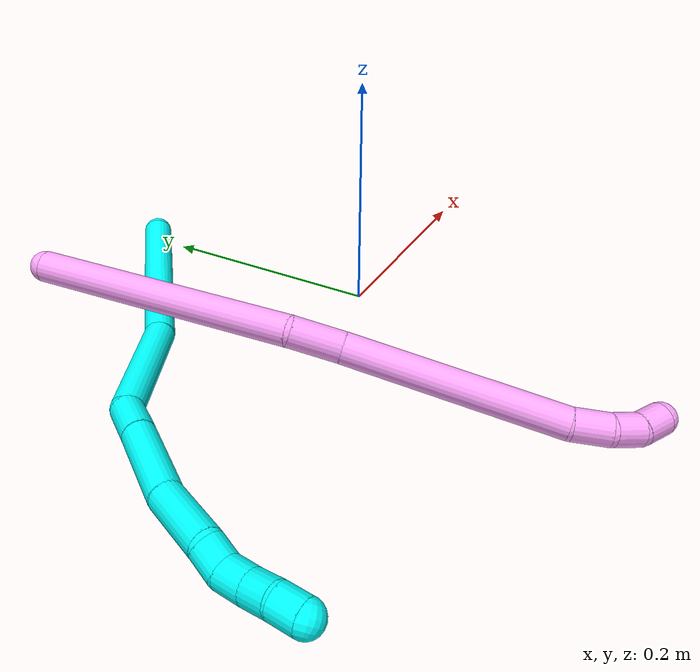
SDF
<sdf version="1.7">
 <world name="default">
  <model name="3">
   <static>0</static>
   <link name="3">
    <collision name="collision-cylinder-e_1_1_4">
     <pose>0.021013 -0.04843 -0.062774 2.48447 0.259076 0.729975</pose>
     <geometry><cylinder><radius>0.0125</radius><length>0.164044</length></cylinder></geometry>
     <surface>
      <friction><ode><mu>1.16</mu><mu2>1.16</mu2><slip1>0</slip1><slip2>0</slip2></ode></friction>
      <contact><ode><kp>1e+06</kp><kd>1</kd><max_vel>0</max_vel><min_depth>0.001</min_depth></ode></contact>
     </surface>
    </collision>
    <visual name="visual-cylinder-e_1_1_4">
     <pose>0.021013 -0.04843 -0.062774 2.48447 0.259076 0.729975</pose>
     <geometry><cylinder><radius>0.0125</radius><length>0.164044</length></cylinder></geometry>
     <material><ambient>0.003922 1 0.996078 1</ambient></material>
    </visual>
    <collision name="collision-cylinder-e_2_4_5">
     <pose>0.042172 -0.128457 -0.164633 2.46175 0.002906 0.008218</pose>
     <geometry><cylinder><radius>0.0125</radius><length>0.10052</length></cylinder></geometry>
     <surface>
      <friction><ode><mu>1.16</mu><mu2>1.16</mu2><slip1>0</slip1><slip2>0</slip2></ode></friction>
      <contact><ode><kp>1e+06</kp><kd>1</kd><max_vel>0</max_vel><min_depth>0.001</min_depth></ode></contact>
     </surface>
    </collision>
    <visual name="visual-cylinder-e_2_4_5">
     <pose>0.042172 -0.128457 -0.164633 2.46175 0.002906 0.008218</pose>
     <geometry><cylinder><radius>0.0125</radius><length>0.10052</length></cylinder></geometry>
     <material><ambient>0.003922 1 0.996078 1</ambient></material>
    </visual>
    <collision name="collision-cylinder-e_3_5_6">
     <pose>0.050192 -0.171664 -0.213114 2.25117 0.485156 0.956814</pose>
     <geometry><cylinder><radius>0.0125</radius><length>0.033767</length></cylinder></geometry>
     <surface>
      <friction><ode><mu>1.16</mu><mu2>1.16</mu2><slip1>0</slip1><slip2>0</slip2></ode></friction>
      <contact><ode><kp>1e+06</kp><kd>1</kd><max_vel>0</max_vel><min_depth>0.001</min_depth></ode></contact>
     </surface>
    </collision>
    <visual name="visual-cylinder-e_3_5_6">
     <pose>0.050192 -0.171664 -0.213114 2.25117 0.485156 0.956814</pose>
     <geometry><cylinder><radius>0.0125</radius><length>0.033767</length></cylinder></geometry>
     <material><ambient>0.003922 1 0.996078 1</ambient></material>
    </visual>
    <collision name="collision-cylinder-e_4_6_7">
     <pose>0.073931 -0.204557 -0.242136 2.31569 0.501311 1.0577</pose>
     <geometry><cylinder><radius>0.0125</radius><length>0.066027</length></cylinder></geometry>
     <surface>
      <friction><ode><mu>1.16</mu><mu2>1.16</mu2><slip1>0</slip1><slip2>0</slip2></ode></friction>
      <contact><ode><kp>1e+06</kp><kd>1</kd><max_vel>0</max_vel><min_depth>0.001</min_depth></ode></contact>
     </surface>
    </collision>
    <visual name="visual-cylinder-e_4_6_7">
     <pose>0.073931 -0.204557 -0.242136 2.31569 0.501311 1.0577</pose>
     <geometry><cylinder><radius>0.0125</radius><length>0.066027</length></cylinder></geometry>
     <material><ambient>0.003922 1 0.996078 1</ambient></material>
    </visual>
    <collision name="collision-cylinder-e_5_7_8">
     <pose>0.105818 -0.243698 -0.273757 2.16232 0.640174 1.1129</pose>
     <geometry><cylinder><radius>0.0125</radius><length>0.053646</length></cylinder></geometry>
     <surface>
      <friction><ode><mu>1.16</mu><mu2>1.16</mu2><slip1>0</slip1><slip2>0</slip2></ode></friction>
      <contact><ode><kp>1e+06</kp><kd>1</kd><max_vel>0</max_vel><min_depth>0.001</min_depth></ode></contact>
     </surface>
    </collision>
    <visual name="visual-cylinder-e_5_7_8">
     <pose>0.105818 -0.243698 -0.273757 2.16232 0.640174 1.1129</pose>
     <geometry><cylinder><radius>0.0125</radius><length>0.053646</length></cylinder></geometry>
     <material><ambient>0.003922 1 0.996078 1</ambient></material>
    </visual>
    <collision name="collision-cylinder-e_6_8_9">
     <pose>0.129177 -0.265095 -0.291609 2.59789 0.820113 2.00118</pose>
     <geometry><cylinder><radius>0.0125</radius><length>0.020064</length></cylinder></geometry>
     <surface>
      <friction><ode><mu>1.16</mu><mu2>1.16</mu2><slip1>0</slip1><slip2>0</slip2></ode></friction>
      <contact><ode><kp>1e+06</kp><kd>1</kd><max_vel>0</max_vel><min_depth>0.001</min_depth></ode></contact>
     </surface>
    </collision>
    <visual name="visual-cylinder-e_6_8_9">
     <pose>0.129177 -0.265095 -0.291609 2.59789 0.820113 2.00118</pose>
     <geometry><cylinder><radius>0.0125</radius><length>0.020064</length></cylinder></geometry>
     <material><ambient>0.003922 1 0.996078 1</ambient></material>
    </visual>
    <collision name="collision-cylinder-e_7_9_10">
     <pose>0.144701 -0.274736 -0.300024 1.96788 0.891288 1.24584</pose>
     <geometry><cylinder><radius>0.0125</radius><length>0.021053</length></cylinder></geometry>
     <surface>
      <friction><ode><mu>1.16</mu><mu2>1.16</mu2><slip1>0</slip1><slip2>0</slip2></ode></friction>
      <contact><ode><kp>1e+06</kp><kd>1</kd><max_vel>0</max_vel><min_depth>0.001</min_depth></ode></contact>
     </surface>
    </collision>
    <visual name="visual-cylinder-e_7_9_10">
     <pose>0.144701 -0.274736 -0.300024 1.96788 0.891288 1.24584</pose>
     <geometry><cylinder><radius>0.0125</radius><length>0.021053</length></cylinder></geometry>
     <material><ambient>0.003922 1 0.996078 1</ambient></material>
    </visual>
    <collision name="collision-cylinder-e_8_10_11">
     <pose>0.159927 -0.288194 -0.30434 1.80531 0.749244 0.9244</pose>
     <geometry><cylinder><radius>0.0125</radius><length>0.020665</length></cylinder></geometry>
     <surface>
      <friction><ode><mu>1.16</mu><mu2>1.16</mu2><slip1>0</slip1><slip2>0</slip2></ode></friction>
      <contact><ode><kp>1e+06</kp><kd>1</kd><max_vel>0</max_vel><min_depth>0.001</min_depth></ode></contact>
     </surface>
    </collision>
    <visual name="visual-cylinder-e_8_10_11">
     <pose>0.159927 -0.288194 -0.30434 1.80531 0.749244 0.9244</pose>
     <geometry><cylinder><radius>0.0125</radius><length>0.020665</length></cylinder></geometry>
     <material><ambient>0.003922 1 0.996078 1</ambient></material>
    </visual>
    <collision name="collision-cylinder-e_9_11_2">
     <pose>0.175163 -0.300951 -0.308504 1.9901 0.946205 1.33548</pose>
     <geometry><cylinder><radius>0.0125</radius><length>0.020213</length></cylinder></geometry>
     <surface>
      <friction><ode><mu>1.16</mu><mu2>1.16</mu2><slip1>0</slip1><slip2>0</slip2></ode></friction>
      <contact><ode><kp>1e+06</kp><kd>1</kd><max_vel>0</max_vel><min_depth>0.001</min_depth></ode></contact>
     </surface>
    </collision>
    <visual name="visual-cylinder-e_9_11_2">
     <pose>0.175163 -0.300951 -0.308504 1.9901 0.946205 1.33548</pose>
     <geometry><cylinder><radius>0.0125</radius><length>0.020213</length></cylinder></geometry>
     <material><ambient>0.003922 1 0.996078 1</ambient></material>
    </visual>
    <collision name="collision-sphere-2">
     <pose>0.183361 -0.306349 -0.31091 0 -0 0</pose>
     <geometry><sphere><radius>0.0125</radius></sphere></geometry>
     <surface>
      <friction><ode><mu>1.16</mu><mu2>1.16</mu2><slip1>0</slip1><slip2>0</slip2></ode></friction>
      <contact><ode><kp>1e+06</kp><kd>1</kd><max_vel>0</max_vel><min_depth>0.001</min_depth></ode></contact>
     </surface>
    </collision>
    <visual name="visual-sphere-2">
     <pose>0.183361 -0.306349 -0.31091 0 -0 0</pose>
     <geometry><sphere><radius>0.0125</radius></sphere></geometry>
     <material><ambient>0.003922 1 0.996078 1</ambient></material>
    </visual>
    <collision name="collision-sphere-11">
     <pose>0.166964 -0.295553 -0.306098 0 -0 0</pose>
     <geometry><sphere><radius>0.0125</radius></sphere></geometry>
     <surface>
      <friction><ode><mu>1.16</mu><mu2>1.16</mu2><slip1>0</slip1><slip2>0</slip2></ode></friction>
      <contact><ode><kp>1e+06</kp><kd>1</kd><max_vel>0</max_vel><min_depth>0.001</min_depth></ode></contact>
     </surface>
    </collision>
    <visual name="visual-sphere-11">
     <pose>0.166964 -0.295553 -0.306098 0 -0 0</pose>
     <geometry><sphere><radius>0.0125</radius></sphere></geometry>
     <material><ambient>0.003922 1 0.996078 1</ambient></material>
    </visual>
    <collision name="collision-sphere-10">
     <pose>0.152889 -0.280836 -0.302582 0 -0 0</pose>
     <geometry><sphere><radius>0.0125</radius></sphere></geometry>
     <surface>
      <friction><ode><mu>1.16</mu><mu2>1.16</mu2><slip1>0</slip1><slip2>0</slip2></ode></friction>
      <contact><ode><kp>1e+06</kp><kd>1</kd><max_vel>0</max_vel><min_depth>0.001</min_depth></ode></contact>
     </surface>
    </collision>
    <visual name="visual-sphere-10">
     <pose>0.152889 -0.280836 -0.302582 0 -0 0</pose>
     <geometry><sphere><radius>0.0125</radius></sphere></geometry>
     <material><ambient>0.003922 1 0.996078 1</ambient></material>
    </visual>
    <collision name="collision-sphere-9">
     <pose>0.136512 -0.268635 -0.297466 0 -0 0</pose>
     <geometry><sphere><radius>0.0125</radius></sphere></geometry>
     <surface>
      <friction><ode><mu>1.16</mu><mu2>1.16</mu2><slip1>0</slip1><slip2>0</slip2></ode></friction>
      <contact><ode><kp>1e+06</kp><kd>1</kd><max_vel>0</max_vel><min_depth>0.001</min_depth></ode></contact>
     </surface>
    </collision>
    <visual name="visual-sphere-9">
     <pose>0.136512 -0.268635 -0.297466 0 -0 0</pose>
     <geometry><sphere><radius>0.0125</radius></sphere></geometry>
     <material><ambient>0.003922 1 0.996078 1</ambient></material>
    </visual>
    <collision name="collision-sphere-4">
     <pose>0.042026 -0.096861 -0.125548 0 -0 0</pose>
     <geometry><sphere><radius>0.0125</radius></sphere></geometry>
     <surface>
      <friction><ode><mu>1.16</mu><mu2>1.16</mu2><slip1>0</slip1><slip2>0</slip2></ode></friction>
      <contact><ode><kp>1e+06</kp><kd>1</kd><max_vel>0</max_vel><min_depth>0.001</min_depth></ode></contact>
     </surface>
    </collision>
    <visual name="visual-sphere-4">
     <pose>0.042026 -0.096861 -0.125548 0 -0 0</pose>
     <geometry><sphere><radius>0.0125</radius></sphere></geometry>
     <material><ambient>0.003922 1 0.996078 1</ambient></material>
    </visual>
    <collision name="collision-sphere-1">
     <geometry><sphere><radius>0.0125</radius></sphere></geometry>
     <surface>
      <friction><ode><mu>1.16</mu><mu2>1.16</mu2><slip1>0</slip1><slip2>0</slip2></ode></friction>
      <contact><ode><kp>1e+06</kp><kd>1</kd><max_vel>0</max_vel><min_depth>0.001</min_depth></ode></contact>
     </surface>
    </collision>
    <visual name="visual-sphere-1">
     <geometry><sphere><radius>0.0125</radius></sphere></geometry>
     <material><ambient>0.003922 1 0.996078 1</ambient></material>
    </visual>
    <collision name="collision-sphere-8">
     <pose>0.121841 -0.261555 -0.285753 0 -0 0</pose>
     <geometry><sphere><radius>0.0125</radius></sphere></geometry>
     <surface>
      <friction><ode><mu>1.16</mu><mu2>1.16</mu2><slip1>0</slip1><slip2>0</slip2></ode></friction>
      <contact><ode><kp>1e+06</kp><kd>1</kd><max_vel>0</max_vel><min_depth>0.001</min_depth></ode></contact>
     </surface>
    </collision>
    <visual name="visual-sphere-8">
     <pose>0.121841 -0.261555 -0.285753 0 -0 0</pose>
     <geometry><sphere><radius>0.0125</radius></sphere></geometry>
     <material><ambient>0.003922 1 0.996078 1</ambient></material>
    </visual>
    <collision name="collision-sphere-5">
     <pose>0.042318 -0.160054 -0.203719 0 -0 0</pose>
     <geometry><sphere><radius>0.0125</radius></sphere></geometry>
     <surface>
      <friction><ode><mu>1.16</mu><mu2>1.16</mu2><slip1>0</slip1><slip2>0</slip2></ode></friction>
      <contact><ode><kp>1e+06</kp><kd>1</kd><max_vel>0</max_vel><min_depth>0.001</min_depth></ode></contact>
     </surface>
    </collision>
    <visual name="visual-sphere-5">
     <pose>0.042318 -0.160054 -0.203719 0 -0 0</pose>
     <geometry><sphere><radius>0.0125</radius></sphere></geometry>
     <material><ambient>0.003922 1 0.996078 1</ambient></material>
    </visual>
    <collision name="collision-sphere-6">
     <pose>0.058065 -0.183273 -0.22251 0 -0 0</pose>
     <geometry><sphere><radius>0.0125</radius></sphere></geometry>
     <surface>
      <friction><ode><mu>1.16</mu><mu2>1.16</mu2><slip1>0</slip1><slip2>0</slip2></ode></friction>
      <contact><ode><kp>1e+06</kp><kd>1</kd><max_vel>0</max_vel><min_depth>0.001</min_depth></ode></contact>
     </surface>
    </collision>
    <visual name="visual-sphere-6">
     <pose>0.058065 -0.183273 -0.22251 0 -0 0</pose>
     <geometry><sphere><radius>0.0125</radius></sphere></geometry>
     <material><ambient>0.003922 1 0.996078 1</ambient></material>
    </visual>
    <collision name="collision-sphere-7">
     <pose>0.089796 -0.225841 -0.261761 0 -0 0</pose>
     <geometry><sphere><radius>0.0125</radius></sphere></geometry>
     <surface>
      <friction><ode><mu>1.16</mu><mu2>1.16</mu2><slip1>0</slip1><slip2>0</slip2></ode></friction>
      <contact><ode><kp>1e+06</kp><kd>1</kd><max_vel>0</max_vel><min_depth>0.001</min_depth></ode></contact>
     </surface>
    </collision>
    <visual name="visual-sphere-7">
     <pose>0.089796 -0.225841 -0.261761 0 -0 0</pose>
     <geometry><sphere><radius>0.0125</radius></sphere></geometry>
     <material><ambient>0.003922 1 0.996078 1</ambient></material>
    </visual>
    <inertial>
     <pose>0.064846 -0.152751 -0.178818 0 -0 0</pose>
     <mass>0.5</mass>
     <inertia>
      <ixx>0.000672</ixx>
      <ixy>0</ixy>
      <ixz>0</ixz>
      <iyy>1.1e-05</iyy>
      <iyz>0</iyz>
      <izz>0.000161</izz>
     </inertia>
    </inertial>
   </link>
   <pose>-0.020329 0.212409 0.024141 -0.914704 0.309445 -1.1461</pose>
  </model>
  <model name="4">
   <static>0</static>
   <link name="4">
    <collision name="collision-cylinder-e_1_1_4">
     <pose>0.01838 -0.086515 -0.059463 2.17296 0.173327 0.327324</pose>
     <geometry><cylinder><radius>0.0125</radius><length>0.213154</length></cylinder></geometry>
     <surface>
      <friction><ode><mu>1.16</mu><mu2>1.16</mu2><slip1>0</slip1><slip2>0</slip2></ode></friction>
      <contact><ode><kp>1e+06</kp><kd>1</kd><max_vel>0</max_vel><min_depth>0.001</min_depth></ode></contact>
     </surface>
    </collision>
    <visual name="visual-cylinder-e_1_1_4">
     <pose>0.01838 -0.086515 -0.059463 2.17296 0.173327 0.327324</pose>
     <geometry><cylinder><radius>0.0125</radius><length>0.213154</length></cylinder></geometry>
     <material><ambient>1 0.65098 0.996078 1</ambient></material>
    </visual>
    <collision name="collision-cylinder-e_2_4_5">
     <pose>0.033527 -0.188287 -0.132657 2.30359 -0.156249 -0.347987</pose>
     <geometry><cylinder><radius>0.0125</radius><length>0.041555</length></cylinder></geometry>
     <surface>
      <friction><ode><mu>1.16</mu><mu2>1.16</mu2><slip1>0</slip1><slip2>0</slip2></ode></friction>
      <contact><ode><kp>1e+06</kp><kd>1</kd><max_vel>0</max_vel><min_depth>0.001</min_depth></ode></contact>
     </surface>
    </collision>
    <visual name="visual-cylinder-e_2_4_5">
     <pose>0.033527 -0.188287 -0.132657 2.30359 -0.156249 -0.347987</pose>
     <geometry><cylinder><radius>0.0125</radius><length>0.041555</length></cylinder></geometry>
     <material><ambient>1 0.65098 0.996078 1</ambient></material>
    </visual>
    <collision name="collision-cylinder-e_3_5_6">
     <pose>0.035111 -0.274332 -0.194183 2.16468 0.056333 0.105935</pose>
     <geometry><cylinder><radius>0.0125</radius><length>0.171101</length></cylinder></geometry>
     <surface>
      <friction><ode><mu>1.16</mu><mu2>1.16</mu2><slip1>0</slip1><slip2>0</slip2></ode></friction>
      <contact><ode><kp>1e+06</kp><kd>1</kd><max_vel>0</max_vel><min_depth>0.001</min_depth></ode></contact>
     </surface>
    </collision>
    <visual name="visual-cylinder-e_3_5_6">
     <pose>0.035111 -0.274332 -0.194183 2.16468 0.056333 0.105935</pose>
     <geometry><cylinder><radius>0.0125</radius><length>0.171101</length></cylinder></geometry>
     <material><ambient>1 0.65098 0.996078 1</ambient></material>
    </visual>
    <collision name="collision-cylinder-e_4_6_7">
     <pose>0.040016 -0.354864 -0.252382 2.38895 0.006185 0.015651</pose>
     <geometry><cylinder><radius>0.0125</radius><length>0.028504</length></cylinder></geometry>
     <surface>
      <friction><ode><mu>1.16</mu><mu2>1.16</mu2><slip1>0</slip1><slip2>0</slip2></ode></friction>
      <contact><ode><kp>1e+06</kp><kd>1</kd><max_vel>0</max_vel><min_depth>0.001</min_depth></ode></contact>
     </surface>
    </collision>
    <visual name="visual-cylinder-e_4_6_7">
     <pose>0.040016 -0.354864 -0.252382 2.38895 0.006185 0.015651</pose>
     <geometry><cylinder><radius>0.0125</radius><length>0.028504</length></cylinder></geometry>
     <material><ambient>1 0.65098 0.996078 1</ambient></material>
    </visual>
    <collision name="collision-cylinder-e_5_7_8">
     <pose>0.038027 -0.370055 -0.272663 2.63755 -0.182007 -0.681173</pose>
     <geometry><cylinder><radius>0.0125</radius><length>0.022943</length></cylinder></geometry>
     <surface>
      <friction><ode><mu>1.16</mu><mu2>1.16</mu2><slip1>0</slip1><slip2>0</slip2></ode></friction>
      <contact><ode><kp>1e+06</kp><kd>1</kd><max_vel>0</max_vel><min_depth>0.001</min_depth></ode></contact>
     </surface>
    </collision>
    <visual name="visual-cylinder-e_5_7_8">
     <pose>0.038027 -0.370055 -0.272663 2.63755 -0.182007 -0.681173</pose>
     <geometry><cylinder><radius>0.0125</radius><length>0.022943</length></cylinder></geometry>
     <material><ambient>1 0.65098 0.996078 1</ambient></material>
    </visual>
    <collision name="collision-cylinder-e_6_8_2">
     <pose>0.033518 -0.37668 -0.293588 3.03547 -0.215602 -2.22914</pose>
     <geometry><cylinder><radius>0.0125</radius><length>0.022743</length></cylinder></geometry>
     <surface>
      <friction><ode><mu>1.16</mu><mu2>1.16</mu2><slip1>0</slip1><slip2>0</slip2></ode></friction>
      <contact><ode><kp>1e+06</kp><kd>1</kd><max_vel>0</max_vel><min_depth>0.001</min_depth></ode></contact>
     </surface>
    </collision>
    <visual name="visual-cylinder-e_6_8_2">
     <pose>0.033518 -0.37668 -0.293588 3.03547 -0.215602 -2.22914</pose>
     <geometry><cylinder><radius>0.0125</radius><length>0.022743</length></cylinder></geometry>
     <material><ambient>1 0.65098 0.996078 1</ambient></material>
    </visual>
    <collision name="collision-sphere-2">
     <pose>0.031085 -0.377857 -0.304634 0 -0 0</pose>
     <geometry><sphere><radius>0.0125</radius></sphere></geometry>
     <surface>
      <friction><ode><mu>1.16</mu><mu2>1.16</mu2><slip1>0</slip1><slip2>0</slip2></ode></friction>
      <contact><ode><kp>1e+06</kp><kd>1</kd><max_vel>0</max_vel><min_depth>0.001</min_depth></ode></contact>
     </surface>
    </collision>
    <visual name="visual-sphere-2">
     <pose>0.031085 -0.377857 -0.304634 0 -0 0</pose>
     <geometry><sphere><radius>0.0125</radius></sphere></geometry>
     <material><ambient>1 0.65098 0.996078 1</ambient></material>
    </visual>
    <collision name="collision-sphere-4">
     <pose>0.036761 -0.173031 -0.118927 0 -0 0</pose>
     <geometry><sphere><radius>0.0125</radius></sphere></geometry>
     <surface>
      <friction><ode><mu>1.16</mu><mu2>1.16</mu2><slip1>0</slip1><slip2>0</slip2></ode></friction>
      <contact><ode><kp>1e+06</kp><kd>1</kd><max_vel>0</max_vel><min_depth>0.001</min_depth></ode></contact>
     </surface>
    </collision>
    <visual name="visual-sphere-4">
     <pose>0.036761 -0.173031 -0.118927 0 -0 0</pose>
     <geometry><sphere><radius>0.0125</radius></sphere></geometry>
     <material><ambient>1 0.65098 0.996078 1</ambient></material>
    </visual>
    <collision name="collision-sphere-1">
     <geometry><sphere><radius>0.0125</radius></sphere></geometry>
     <surface>
      <friction><ode><mu>1.16</mu><mu2>1.16</mu2><slip1>0</slip1><slip2>0</slip2></ode></friction>
      <contact><ode><kp>1e+06</kp><kd>1</kd><max_vel>0</max_vel><min_depth>0.001</min_depth></ode></contact>
     </surface>
    </collision>
    <visual name="visual-sphere-1">
     <geometry><sphere><radius>0.0125</radius></sphere></geometry>
     <material><ambient>1 0.65098 0.996078 1</ambient></material>
    </visual>
    <collision name="collision-sphere-8">
     <pose>0.035951 -0.375503 -0.282542 0 -0 0</pose>
     <geometry><sphere><radius>0.0125</radius></sphere></geometry>
     <surface>
      <friction><ode><mu>1.16</mu><mu2>1.16</mu2><slip1>0</slip1><slip2>0</slip2></ode></friction>
      <contact><ode><kp>1e+06</kp><kd>1</kd><max_vel>0</max_vel><min_depth>0.001</min_depth></ode></contact>
     </surface>
    </collision>
    <visual name="visual-sphere-8">
     <pose>0.035951 -0.375503 -0.282542 0 -0 0</pose>
     <geometry><sphere><radius>0.0125</radius></sphere></geometry>
     <material><ambient>1 0.65098 0.996078 1</ambient></material>
    </visual>
    <collision name="collision-sphere-5">
     <pose>0.030294 -0.203543 -0.146387 0 -0 0</pose>
     <geometry><sphere><radius>0.0125</radius></sphere></geometry>
     <surface>
      <friction><ode><mu>1.16</mu><mu2>1.16</mu2><slip1>0</slip1><slip2>0</slip2></ode></friction>
      <contact><ode><kp>1e+06</kp><kd>1</kd><max_vel>0</max_vel><min_depth>0.001</min_depth></ode></contact>
     </surface>
    </collision>
    <visual name="visual-sphere-5">
     <pose>0.030294 -0.203543 -0.146387 0 -0 0</pose>
     <geometry><sphere><radius>0.0125</radius></sphere></geometry>
     <material><ambient>1 0.65098 0.996078 1</ambient></material>
    </visual>
    <collision name="collision-sphere-6">
     <pose>0.039928 -0.345122 -0.24198 0 -0 0</pose>
     <geometry><sphere><radius>0.0125</radius></sphere></geometry>
     <surface>
      <friction><ode><mu>1.16</mu><mu2>1.16</mu2><slip1>0</slip1><slip2>0</slip2></ode></friction>
      <contact><ode><kp>1e+06</kp><kd>1</kd><max_vel>0</max_vel><min_depth>0.001</min_depth></ode></contact>
     </surface>
    </collision>
    <visual name="visual-sphere-6">
     <pose>0.039928 -0.345122 -0.24198 0 -0 0</pose>
     <geometry><sphere><radius>0.0125</radius></sphere></geometry>
     <material><ambient>1 0.65098 0.996078 1</ambient></material>
    </visual>
    <collision name="collision-sphere-7">
     <pose>0.040104 -0.364606 -0.262784 0 -0 0</pose>
     <geometry><sphere><radius>0.0125</radius></sphere></geometry>
     <surface>
      <friction><ode><mu>1.16</mu><mu2>1.16</mu2><slip1>0</slip1><slip2>0</slip2></ode></friction>
      <contact><ode><kp>1e+06</kp><kd>1</kd><max_vel>0</max_vel><min_depth>0.001</min_depth></ode></contact>
     </surface>
    </collision>
    <visual name="visual-sphere-7">
     <pose>0.040104 -0.364606 -0.262784 0 -0 0</pose>
     <geometry><sphere><radius>0.0125</radius></sphere></geometry>
     <material><ambient>1 0.65098 0.996078 1</ambient></material>
    </visual>
    <inertial>
     <pose>0.028188 -0.200752 -0.143078 0 -0 0</pose>
     <mass>0.5</mass>
     <inertia>
      <ixx>0.001492</ixx>
      <ixy>0</ixy>
      <ixz>0</ixz>
      <iyy>-0.000372</iyy>
      <iyz>0</iyz>
      <izz>0.000835</izz>
     </inertia>
    </inertial>
   </link>
   <pose>-0.181608 0.190906 0.071337 2.06825 -1.08972 -2.51096</pose>
  </model>
 </world>
</sdf>
